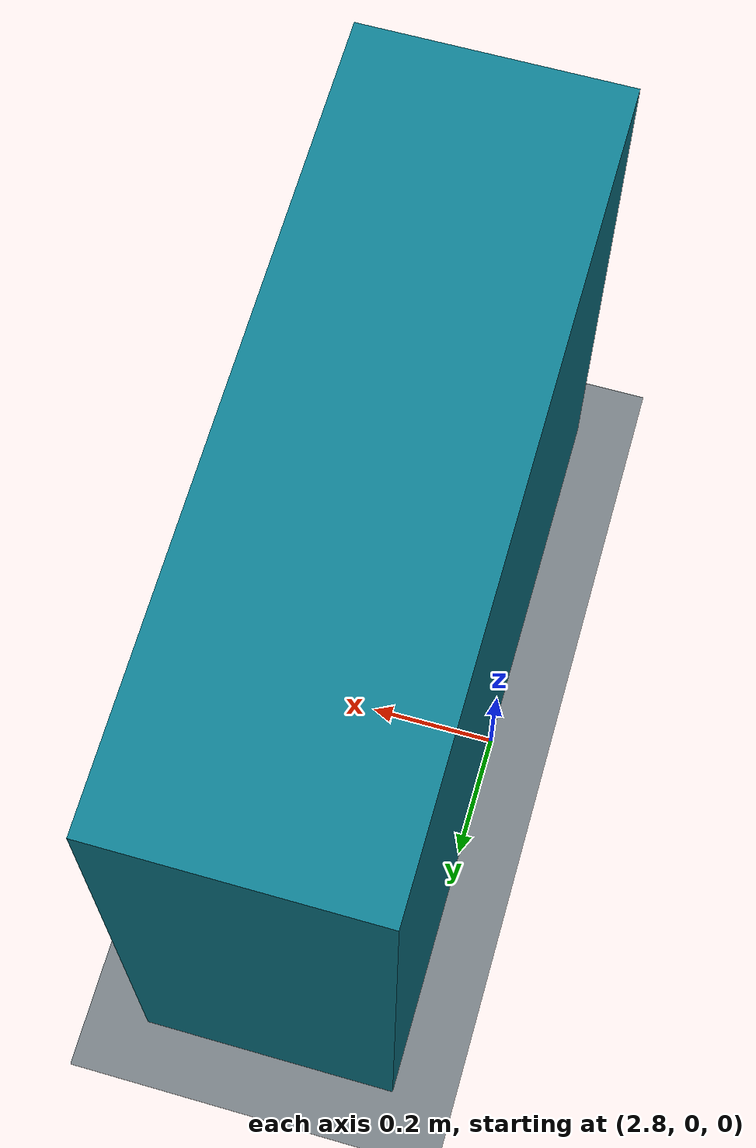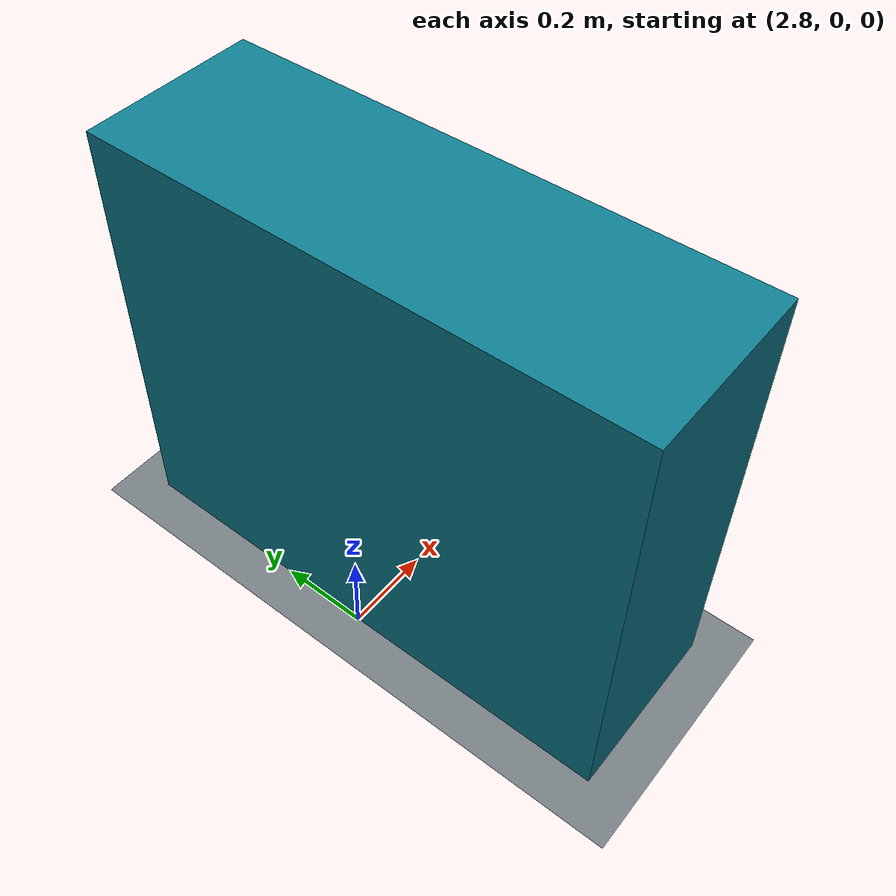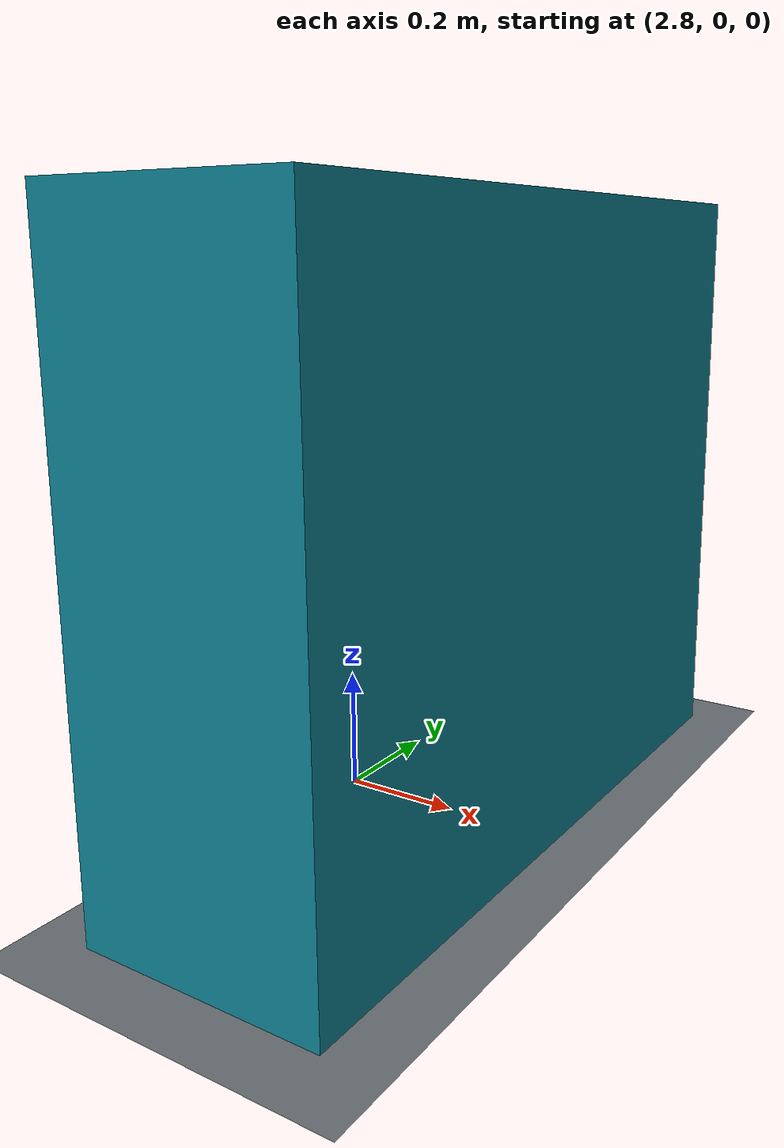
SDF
<?xml version="1.0"?>
<sdf version="1.9">
  <world name="amr_validation">
    <gravity>0 0 -9.81</gravity>
    <physics name="physics" type="ignored"><max_step_size>0.001</max_step_size><real_time_factor>1</real_time_factor></physics>
    <plugin filename="gz-sim-physics-system" name="gz::sim::systems::Physics"/>
    <plugin filename="gz-sim-user-commands-system" name="gz::sim::systems::UserCommands"/>
    <plugin filename="gz-sim-scene-broadcaster-system" name="gz::sim::systems::SceneBroadcaster"/>
    <plugin filename="gz-sim-sensors-system" name="gz::sim::systems::Sensors"><render_engine>ogre2</render_engine></plugin>
    <plugin filename="gz-sim-imu-system" name="gz::sim::systems::Imu"/>
    <scene><ambient>0.6 0.6 0.6 1</ambient><background>0.22 0.27 0.32 1</background><shadows>true</shadows></scene>
    <light name="sun" type="directional"><pose>0 0 8 0 0 0</pose><direction>-0.3 0.2 -1</direction>
      <diffuse>0.9 0.9 0.9 1</diffuse><specular>0.2 0.2 0.2 1</specular><cast_shadows>true</cast_shadows>
    </light>
    <model name="ground"><static>true</static><link name="ground_link">
      <collision name="floor_collision"><geometry><plane><normal>0 0 1</normal><size>30 30</size></plane></geometry></collision>
      <visual name="floor_visual"><geometry><plane><normal>0 0 1</normal><size>30 30</size></plane></geometry>
        <material><ambient>0.45 0.48 0.50 1</ambient><diffuse>0.45 0.48 0.50 1</diffuse></material>
      </visual>
    </link></model>
    <!-- A known obstacle gives a finite, checkable return for LiDAR and RGB-D. -->
    <model name="test_obstacle"><static>true</static><pose>3 0 0.5 0 0 0</pose><link name="box">
      <collision name="collision"><geometry><box><size>0.4 1.2 1</size></box></geometry></collision>
      <visual name="visual"><geometry><box><size>0.4 1.2 1</size></box></geometry>
        <material><ambient>0.05 0.48 0.55 1</ambient><diffuse>0.05 0.48 0.55 1</diffuse></material>
      </visual>
    </link></model>
  </world>
</sdf>
